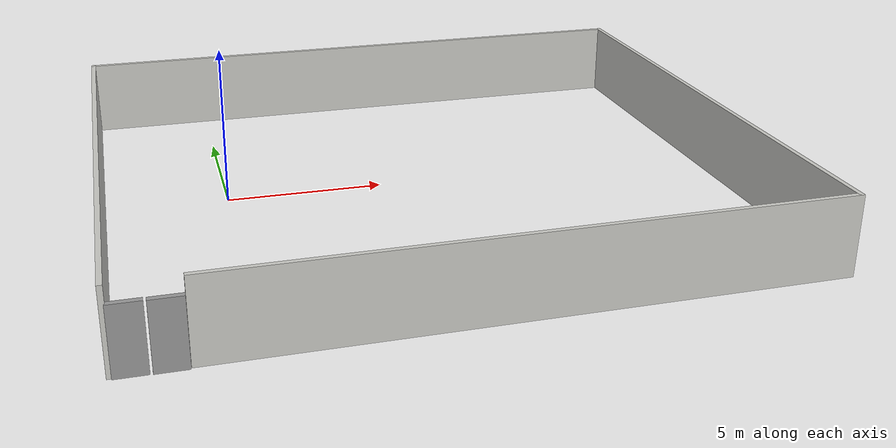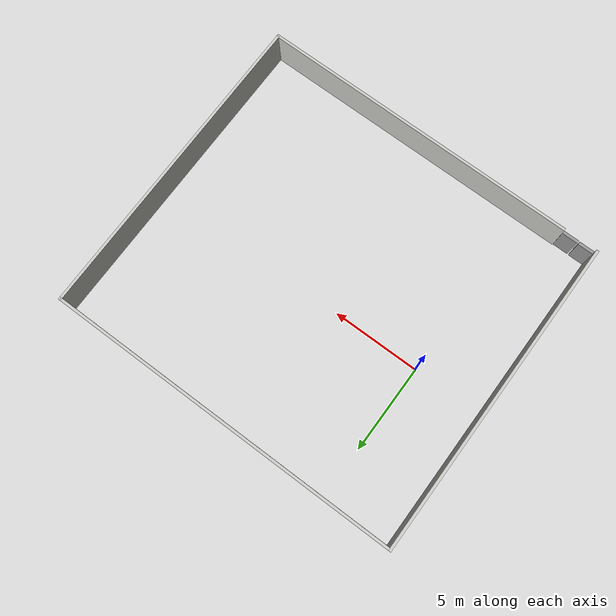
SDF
<?xml version='1.0'?>
<sdf version='1.7'>
  <model name='Building'>
    <pose>6.12508 -0.963212 0 0 -0 0</pose>
    <link name='Door_0'>
      <collision name='Door_0_Collision'>
        <geometry>
          <box>
            <size>0.9 0.17 2</size>
          </box>
        </geometry>
        <pose>0 0 1 0 -0 0</pose>
      </collision>
      <visual name='Door_0_Visual'>
        <pose>0 0 1 0 -0 0</pose>
        <geometry>
          <box>
            <size>0.9 0.17 2</size>
          </box>
        </geometry>
        <material>
          <script>
            <uri>file://media/materials/scripts/gazebo.material</uri>
            <name>Gazebo/Grey</name>
          </script>
        </material>
      </visual>
      <pose>-9.55514 -8.95706 0 0 -0 0</pose>
    </link>
    <link name='Door_1'>
      <collision name='Door_1_Collision'>
        <geometry>
          <box>
            <size>0.9 0.17 2</size>
          </box>
        </geometry>
        <pose>0 0 1 0 -0 0</pose>
      </collision>
      <visual name='Door_1_Visual'>
        <pose>0 0 1 0 -0 0</pose>
        <geometry>
          <box>
            <size>0.9 0.17 2</size>
          </box>
        </geometry>
        <material>
          <script>
            <uri>file://media/materials/scripts/gazebo.material</uri>
            <name>Gazebo/Grey</name>
          </script>
        </material>
      </visual>
      <pose>-8.58516 -8.97356 0 0 -0 0</pose>
    </link>
    <link name='Wall_11'>
      <collision name='Wall_11_Collision'>
        <geometry>
          <box>
            <size>18.25 0.15 2.5</size>
          </box>
        </geometry>
        <pose>0 0 1.25 0 -0 0</pose>
      </collision>
      <visual name='Wall_11_Visual'>
        <pose>0 0 1.25 0 -0 0</pose>
        <geometry>
          <box>
            <size>18.25 0.15 2.5</size>
          </box>
        </geometry>
        <material>
          <script>
            <uri>file://media/materials/scripts/gazebo.material</uri>
            <name>Gazebo/CeilingTiled</name>
          </script>
          <ambient>0.360784 0.207843 0.4 1</ambient>
        </material>
        <meta>
          <layer>0</layer>
        </meta>
      </visual>
      <pose>1.00008 -8.92521 0 0 -0 3.14159</pose>
    </link>
    <link name='Wall_15'>
      <collision name='Wall_15_Collision'>
        <geometry>
          <box>
            <size>18 0.15 2.5</size>
          </box>
        </geometry>
        <pose>0 0 1.25 0 -0 0</pose>
      </collision>
      <visual name='Wall_15_Visual'>
        <pose>0 0 1.25 0 -0 0</pose>
        <geometry>
          <box>
            <size>18 0.15 2.5</size>
          </box>
        </geometry>
        <material>
          <script>
            <uri>file://media/materials/scripts/gazebo.material</uri>
            <name>Gazebo/CeilingTiled</name>
          </script>
          <ambient>0.360784 0.207843 0.4 1</ambient>
        </material>
        <meta>
          <layer>0</layer>
        </meta>
      </visual>
      <pose>-10.0501 0.000212 0 0 -0 -1.5708</pose>
    </link>
    <link name='Wall_2'>
      <collision name='Wall_2_Collision'>
        <geometry>
          <box>
            <size>20.25 0.15 2.5</size>
          </box>
        </geometry>
        <pose>0 0 1.25 0 -0 0</pose>
      </collision>
      <visual name='Wall_2_Visual'>
        <pose>0 0 1.25 0 -0 0</pose>
        <geometry>
          <box>
            <size>20.25 0.15 2.5</size>
          </box>
        </geometry>
        <material>
          <script>
            <uri>file://media/materials/scripts/gazebo.material</uri>
            <name>Gazebo/CeilingTiled</name>
          </script>
          <ambient>0.360784 0.207843 0.4 1</ambient>
        </material>
        <meta>
          <layer>0</layer>
        </meta>
      </visual>
      <pose>0 8.925 0 0 -0 -2.1e-05</pose>
    </link>
    <link name='Wall_3'>
      <collision name='Wall_3_Collision'>
        <geometry>
          <box>
            <size>18 0.15 2.5</size>
          </box>
        </geometry>
        <pose>0 0 1.25 0 -0 0</pose>
      </collision>
      <visual name='Wall_3_Visual'>
        <pose>0 0 1.25 0 -0 0</pose>
        <geometry>
          <box>
            <size>18 0.15 2.5</size>
          </box>
        </geometry>
        <material>
          <script>
            <uri>file://media/materials/scripts/gazebo.material</uri>
            <name>Gazebo/CeilingTiled</name>
          </script>
          <ambient>0.360784 0.207843 0.4 1</ambient>
        </material>
        <meta>
          <layer>0</layer>
        </meta>
      </visual>
      <pose>10.0501 -0.000213 0 0 -0 -1.5708</pose>
    </link>
    <static>1</static>
  </model>
</sdf>
